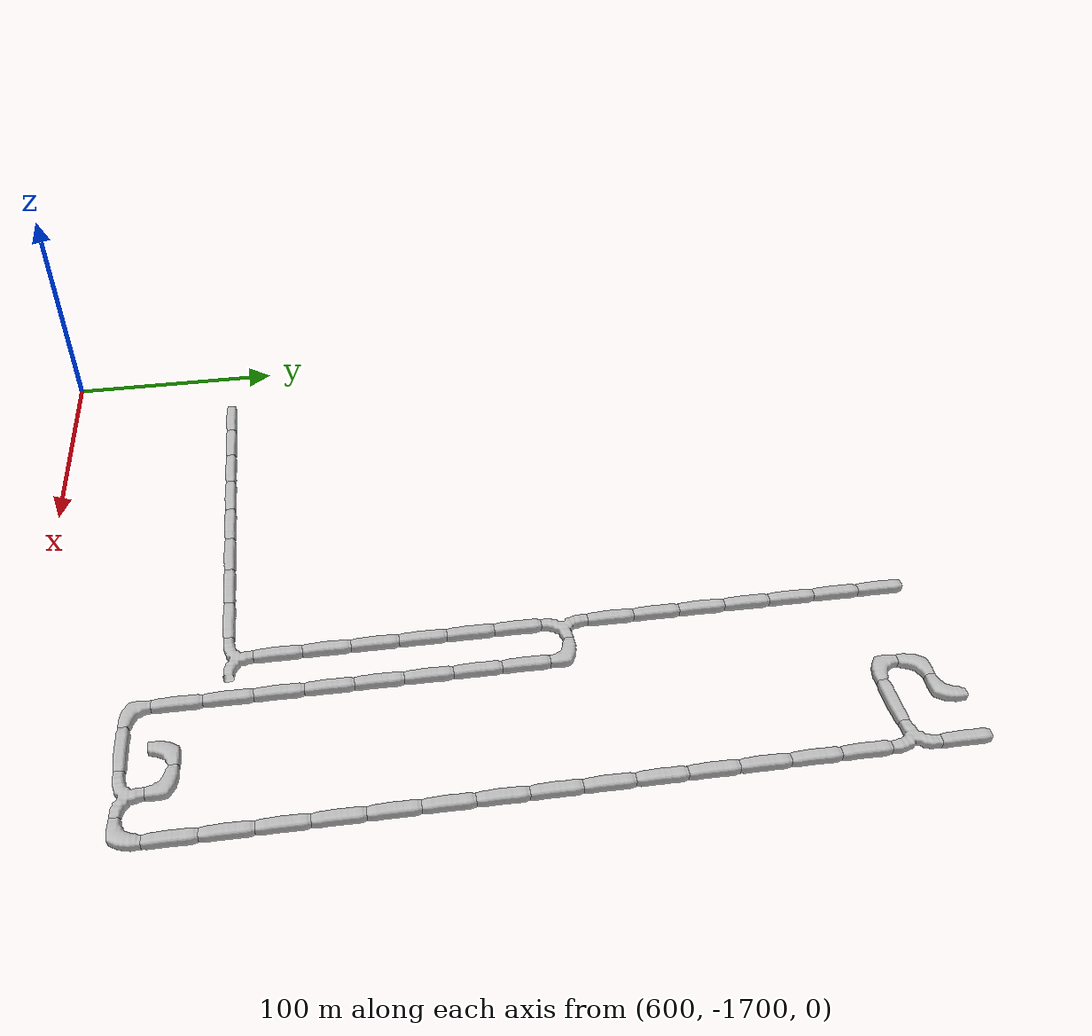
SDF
<sdf version="1.6">
 <world name="cave_32000_4">
  <include>
   <static>true</static>
   <name>cave_40_-67</name>
   <pose>800 -1340 0 0 0 0.0</pose>
   <uri>model://cave_straight_20m</uri>
  </include>
  <include>
   <static>true</static>
   <name>cave_40_-68</name>
   <pose>800 -1360 0 0 0 0.0</pose>
   <uri>model://cave_straight_20m</uri>
  </include>
  <include>
   <static>true</static>
   <name>cave_40_-69</name>
   <pose>800 -1380 0 0 0 0.0</pose>
   <uri>model://cave_straight_20m</uri>
  </include>
  <include>
   <static>true</static>
   <name>cave_40_-70</name>
   <pose>800 -1400 0 0 0 0.0</pose>
   <uri>model://cave_straight_20m</uri>
  </include>
  <include>
   <static>true</static>
   <name>cave_40_-71</name>
   <pose>800 -1420 0 0 0 0.0</pose>
   <uri>model://cave_straight_20m</uri>
  </include>
  <include>
   <static>true</static>
   <name>cave_40_-72</name>
   <pose>800 -1440 0 0 0 0.0</pose>
   <uri>model://cave_straight_20m</uri>
  </include>
  <include>
   <static>true</static>
   <name>cave_40_-73</name>
   <pose>800 -1460 0 0 0 0.0</pose>
   <uri>model://cave_straight_20m</uri>
  </include>
  <include>
   <static>true</static>
   <name>cave_40_-74</name>
   <pose>800 -1480 0 0 0 -1.5707963267948966</pose>
   <uri>model://cave_3way_20m</uri>
  </include>
  <include>
   <static>true</static>
   <name>cave_41_-74</name>
   <pose>820 -1480 0 0 0 3.141592653589793</pose>
   <uri>model://cave_L_20m</uri>
  </include>
  <include>
   <static>true</static>
   <name>cave_41_-75</name>
   <pose>820 -1500 0 0 0 0.0</pose>
   <uri>model://cave_straight_20m</uri>
  </include>
  <include>
   <static>true</static>
   <name>cave_41_-76</name>
   <pose>820 -1520 0 0 0 0.0</pose>
   <uri>model://cave_straight_20m</uri>
  </include>
  <include>
   <static>true</static>
   <name>cave_41_-77</name>
   <pose>820 -1540 0 0 0 0.0</pose>
   <uri>model://cave_straight_20m</uri>
  </include>
  <include>
   <static>true</static>
   <name>cave_41_-78</name>
   <pose>820 -1560 0 0 0 0.0</pose>
   <uri>model://cave_straight_20m</uri>
  </include>
  <include>
   <static>true</static>
   <name>cave_41_-79</name>
   <pose>820 -1580 0 0 0 0.0</pose>
   <uri>model://cave_straight_20m</uri>
  </include>
  <include>
   <static>true</static>
   <name>cave_41_-80</name>
   <pose>820 -1600 0 0 0 0.0</pose>
   <uri>model://cave_straight_20m</uri>
  </include>
  <include>
   <static>true</static>
   <name>cave_41_-81</name>
   <pose>820 -1620 0 0 0 0.0</pose>
   <uri>model://cave_straight_20m</uri>
  </include>
  <include>
   <static>true</static>
   <name>cave_41_-82</name>
   <pose>820 -1640 0 0 0 0.0</pose>
   <uri>model://cave_straight_20m</uri>
  </include>
  <include>
   <static>true</static>
   <name>cave_41_-83</name>
   <pose>820 -1660 0 0 0 0.0</pose>
   <uri>model://cave_L_20m</uri>
  </include>
  <include>
   <static>true</static>
   <name>cave_42_-83</name>
   <pose>840 -1660 0 0 0 1.5707963267948966</pose>
   <uri>model://cave_straight_20m</uri>
  </include>
  <include>
   <static>true</static>
   <name>cave_43_-83</name>
   <pose>860 -1660 0 0 0 0.0</pose>
   <uri>model://cave_3way_20m</uri>
  </include>
  <include>
   <static>true</static>
   <name>cave_44_-83</name>
   <pose>880 -1660 0 0 0 1.5707963267948966</pose>
   <uri>model://cave_L_20m</uri>
  </include>
  <include>
   <static>true</static>
   <name>cave_44_-82</name>
   <pose>880 -1640 0 0 0 0.0</pose>
   <uri>model://cave_straight_20m</uri>
  </include>
  <include>
   <static>true</static>
   <name>cave_44_-81</name>
   <pose>880 -1620 0 0 0 0.0</pose>
   <uri>model://cave_straight_20m</uri>
  </include>
  <include>
   <static>true</static>
   <name>cave_44_-80</name>
   <pose>880 -1600 0 0 0 0.0</pose>
   <uri>model://cave_straight_20m</uri>
  </include>
  <include>
   <static>true</static>
   <name>cave_44_-79</name>
   <pose>880 -1580 0 0 0 0.0</pose>
   <uri>model://cave_straight_20m</uri>
  </include>
  <include>
   <static>true</static>
   <name>cave_44_-78</name>
   <pose>880 -1560 0 0 0 0.0</pose>
   <uri>model://cave_straight_20m</uri>
  </include>
  <include>
   <static>true</static>
   <name>cave_44_-77</name>
   <pose>880 -1540 0 0 0 0.0</pose>
   <uri>model://cave_straight_20m</uri>
  </include>
  <include>
   <static>true</static>
   <name>cave_44_-76</name>
   <pose>880 -1520 0 0 0 0.0</pose>
   <uri>model://cave_straight_20m</uri>
  </include>
  <include>
   <static>true</static>
   <name>cave_44_-75</name>
   <pose>880 -1500 0 0 0 0.0</pose>
   <uri>model://cave_straight_20m</uri>
  </include>
  <include>
   <static>true</static>
   <name>cave_44_-74</name>
   <pose>880 -1480 0 0 0 0.0</pose>
   <uri>model://cave_straight_20m</uri>
  </include>
  <include>
   <static>true</static>
   <name>cave_44_-73</name>
   <pose>880 -1460 0 0 0 0.0</pose>
   <uri>model://cave_straight_20m</uri>
  </include>
  <include>
   <static>true</static>
   <name>cave_44_-72</name>
   <pose>880 -1440 0 0 0 0.0</pose>
   <uri>model://cave_straight_20m</uri>
  </include>
  <include>
   <static>true</static>
   <name>cave_44_-71</name>
   <pose>880 -1420 0 0 0 0.0</pose>
   <uri>model://cave_straight_20m</uri>
  </include>
  <include>
   <static>true</static>
   <name>cave_44_-70</name>
   <pose>880 -1400 0 0 0 0.0</pose>
   <uri>model://cave_straight_20m</uri>
  </include>
  <include>
   <static>true</static>
   <name>cave_44_-69</name>
   <pose>880 -1380 0 0 0 0.0</pose>
   <uri>model://cave_straight_20m</uri>
  </include>
  <include>
   <static>true</static>
   <name>cave_44_-68</name>
   <pose>880 -1360 0 0 0 1.5707963267948966</pose>
   <uri>model://cave_3way_20m</uri>
  </include>
  <include>
   <static>true</static>
   <name>cave_43_-68</name>
   <pose>860 -1360 0 0 0 1.5707963267948966</pose>
   <uri>model://cave_straight_20m</uri>
  </include>
  <include>
   <static>true</static>
   <name>cave_42_-68</name>
   <pose>840 -1360 0 0 0 0.0</pose>
   <uri>model://cave_L_20m</uri>
  </include>
  <include>
   <static>true</static>
   <name>cave_42_-67</name>
   <pose>840 -1340 0 0 0 -1.5707963267948966</pose>
   <uri>model://cave_L_20m</uri>
  </include>
  <include>
   <static>true</static>
   <name>cave_43_-67</name>
   <pose>860 -1340 0 0 0 1.5707963267948966</pose>
   <uri>model://cave_L_20m</uri>
  </include>
  <include>
   <static>true</static>
   <name>cave_44_-67</name>
   <pose>880 -1340 0 0 0 0.0</pose>
   <uri>model://cave_straight_20m</uri>
  </include>
  <include>
   <static>true</static>
   <name>cave_43_-82</name>
   <pose>860 -1640 0 0 0 3.141592653589793</pose>
   <uri>model://cave_L_20m</uri>
  </include>
  <include>
   <static>true</static>
   <name>cave_42_-82</name>
   <pose>840 -1640 0 0 0 -1.5707963267948966</pose>
   <uri>model://cave_L_20m</uri>
  </include>
  <include>
   <static>true</static>
   <name>cave_40_-75</name>
   <pose>800 -1500 0 0 0 0.0</pose>
   <uri>model://cave_straight_20m</uri>
  </include>
  <include>
   <static>true</static>
   <name>cave_40_-76</name>
   <pose>800 -1520 0 0 0 0.0</pose>
   <uri>model://cave_straight_20m</uri>
  </include>
  <include>
   <static>true</static>
   <name>cave_40_-77</name>
   <pose>800 -1540 0 0 0 0.0</pose>
   <uri>model://cave_straight_20m</uri>
  </include>
  <include>
   <static>true</static>
   <name>cave_40_-78</name>
   <pose>800 -1560 0 0 0 0.0</pose>
   <uri>model://cave_straight_20m</uri>
  </include>
  <include>
   <static>true</static>
   <name>cave_40_-79</name>
   <pose>800 -1580 0 0 0 0.0</pose>
   <uri>model://cave_straight_20m</uri>
  </include>
  <include>
   <static>true</static>
   <name>cave_40_-80</name>
   <pose>800 -1600 0 0 0 0.0</pose>
   <uri>model://cave_straight_20m</uri>
  </include>
  <include>
   <static>true</static>
   <name>cave_40_-81</name>
   <pose>800 -1620 0 0 0 0.0</pose>
   <uri>model://cave_3way_20m</uri>
  </include>
  <include>
   <static>true</static>
   <name>cave_39_-81</name>
   <pose>780 -1620 0 0 0 1.5707963267948966</pose>
   <uri>model://cave_straight_20m</uri>
  </include>
  <include>
   <static>true</static>
   <name>cave_38_-81</name>
   <pose>760 -1620 0 0 0 1.5707963267948966</pose>
   <uri>model://cave_straight_20m</uri>
  </include>
  <include>
   <static>true</static>
   <name>cave_37_-81</name>
   <pose>740 -1620 0 0 0 1.5707963267948966</pose>
   <uri>model://cave_straight_20m</uri>
  </include>
  <include>
   <static>true</static>
   <name>cave_36_-81</name>
   <pose>720 -1620 0 0 0 1.5707963267948966</pose>
   <uri>model://cave_straight_20m</uri>
  </include>
  <include>
   <static>true</static>
   <name>cave_35_-81</name>
   <pose>700 -1620 0 0 0 1.5707963267948966</pose>
   <uri>model://cave_straight_20m</uri>
  </include>
  <include>
   <static>true</static>
   <name>cave_34_-81</name>
   <pose>680 -1620 0 0 0 1.5707963267948966</pose>
   <uri>model://cave_straight_20m</uri>
  </include>
  <include>
   <static>true</static>
   <name>cave_33_-81</name>
   <pose>660 -1620 0 0 0 1.5707963267948966</pose>
   <uri>model://cave_straight_20m</uri>
  </include>
  <include>
   <static>true</static>
   <name>cave_32_-81</name>
   <pose>640 -1620 0 0 0 1.5707963267948966</pose>
   <uri>model://cave_straight_20m</uri>
  </include>
 </world>
</sdf>
